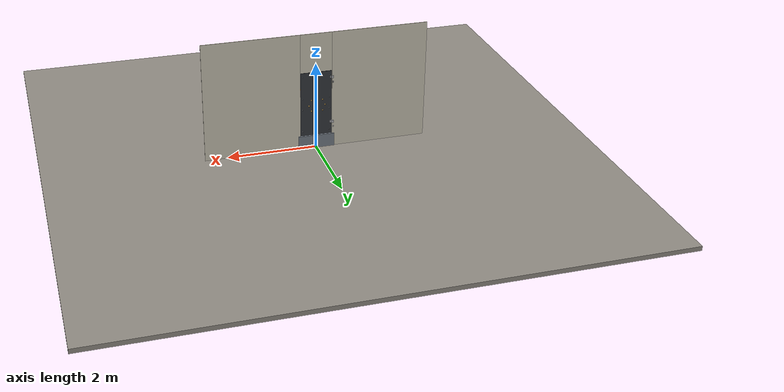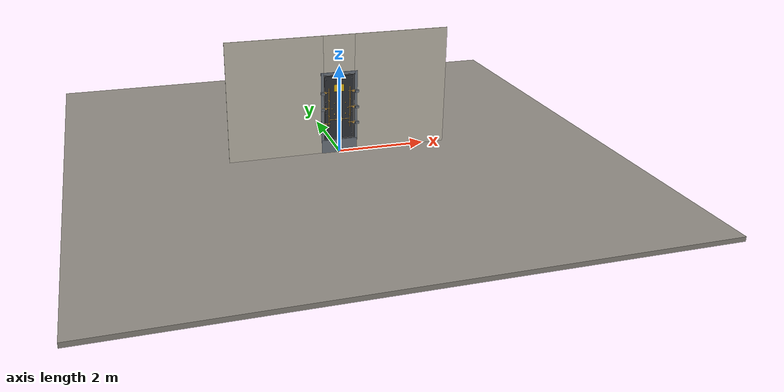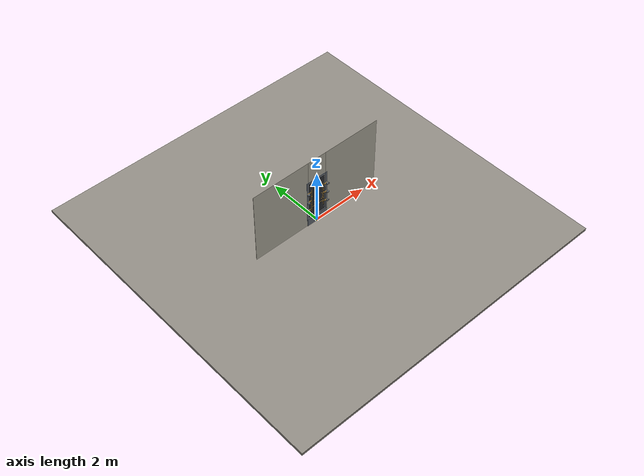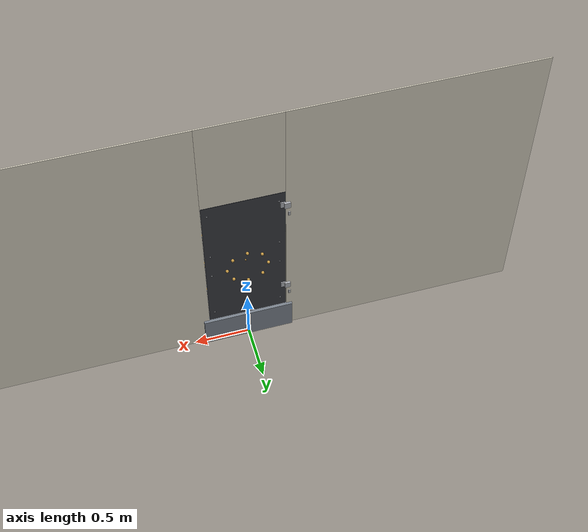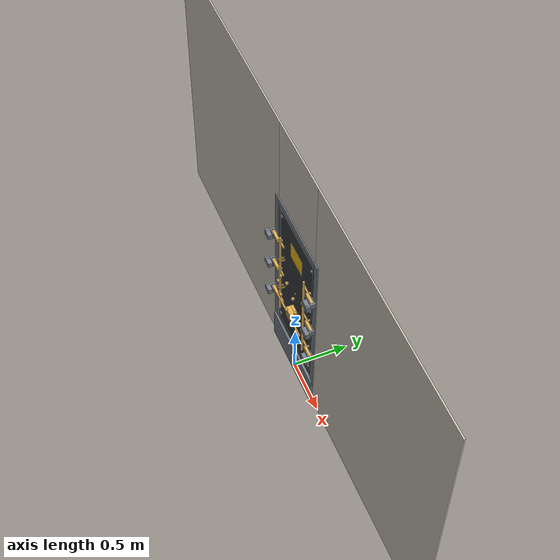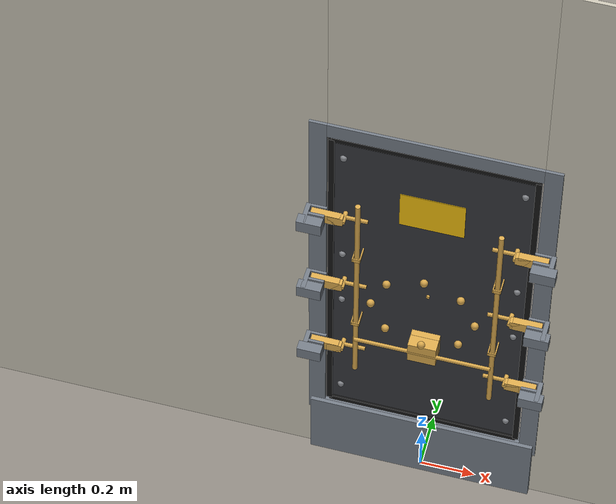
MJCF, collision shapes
<?xml version="1.0" ?>
<mujoco model="db0744_ship_watertight_full">
  <compiler angle="radian" meshdir="../../hardware" texturedir="../../textures" autolimits="true" inertiafromgeom="false"/>
  <option timestep="0.002" integrator="implicitfast" cone="elliptic" impratio="10" noslip_iterations="3">
    <flag multiccd="enable"/>
  </option>
  <size memory="16M"/>
  <default>
    <geom condim="4" solref="0.005 1" solimp="0.95 0.99 0.001"/>
    <joint solreflimit="0.005 1" solimplimit="0.95 0.99 0.001"/>
    <tendon solreflimit="0.005 1"/>
    <equality solref="0.002 1"/>
  </default>
  <visual>
    <headlight ambient="0.4 0.4 0.4" diffuse="0.7 0.7 0.7" specular="0.2 0.2 0.2"/>
    <quality shadowsize="4096"/>
    <map znear="0.01" zfar="60"/>
  </visual>
  <asset>
    <mesh name="hinge_aa6f1f959a" file="hinge_aa6f1f959a.obj"/>
    <mesh name="hinge_jamb_5a3d6f5c54" file="hinge_jamb_5a3d6f5c54.obj"/>
    <mesh name="wheel_9768cee49b" file="wheel_9768cee49b.obj"/>
    <material name="mat_floor" rgba="0.55 0.53 0.5 1" specular="0.2" shininess="0.15" reflectance="0"/>
    <material name="mat_wall" rgba="0.78 0.76 0.7 1" specular="0.2" shininess="0.1" reflectance="0"/>
    <material name="mat_leaf" rgba="0.2 0.21 0.23 1" specular="0.23" shininess="0.54" reflectance="0.02"/>
    <material name="mat_rivet" rgba="0.55 0.56 0.58 1" specular="0.8" shininess="0.55" reflectance="0.4"/>
    <material name="mat_frame" rgba="0.45 0.48 0.52 1" specular="0.32" shininess="0.6" reflectance="0.08"/>
    <material name="mat_gasket" rgba="0.08 0.08 0.08 1" specular="0.2" shininess="0.1" reflectance="0"/>
    <material name="mat_op_brass" rgba="0.85 0.66 0.3 1" specular="0.8" shininess="0.75" reflectance="0.4"/>
    <material name="mat_trim" rgba="0.85 0.66 0.3 1" specular="0.8" shininess="0.75" reflectance="0.4"/>
    <material name="mat_hinge" rgba="0.65 0.66 0.68 1" specular="0.74" shininess="0.5" reflectance="0.36"/>
    <material name="mat_placard" rgba="0.95 0.75 0.05 1" specular="0.2" shininess="0.5" reflectance="0"/>
    <texture name="skybox" type="skybox" builtin="gradient" rgb1="0.6 0.7 0.85" rgb2="0.9 0.92 0.95" width="256" height="256"/>
  </asset>
  <worldbody>
    <light name="sun" pos="1.5 -2.5 4" dir="-0.3 0.5 -0.8" directional="true" diffuse="0.8 0.8 0.8" specular="0.3 0.3 0.3" castshadow="true"/>
    <light name="fill" pos="-1.5 2.5 3" dir="0.3 -0.5 -0.7" directional="true" diffuse="0.35 0.35 0.4" castshadow="false"/>
    <camera name="robot_view" pos="0 -2.040625 1.476375" xyaxes="1 0 0 0 0.26963 0.962964" fovy="52"/>
    <camera name="far_view" pos="0 2.040625 1.476375" xyaxes="-1 0 0 0 -0.26963 0.962964" fovy="52"/>
    <camera name="iso" pos="1.550875 -1.714125 1.802875" xyaxes="0.741536 0.670913 0 -0.242917 0.268487 0.932151" fovy="46"/>
    <camera name="detail_handle" pos="0.179 -0.884 1.51" xyaxes="0.97561 0.219512 0 -0.070934 0.315262 0.94635" fovy="38"/>
    <geom name="floor" type="box" size="6 6 0.05" pos="0 0 -0.05" material="mat_floor" group="0" contype="1" conaffinity="1" friction="0.8 0.005 0.0001" density="2400"/>
    <geom name="wall_left" type="box" size="1.0725 0.006 1.35" pos="-1.4275 0 1.35" material="mat_wall" group="0" contype="1" conaffinity="1" friction="0.6 0.005 0.0001" density="800"/>
    <geom name="wall_right" type="box" size="1.0725 0.006 1.35" pos="1.4275 0 1.35" material="mat_wall" group="0" contype="1" conaffinity="1" friction="0.6 0.005 0.0001" density="800"/>
    <geom name="wall_header" type="box" size="0.355 0.006 0.445" pos="0 0 2.255" material="mat_wall" group="0" contype="1" conaffinity="1" friction="0.6 0.005 0.0001" density="800"/>
    <geom name="flange_l" type="box" size="0.03 0.006 0.815" pos="-0.385 -0.01 1.055" material="mat_frame" group="0" contype="1" conaffinity="1" friction="0.6 0.005 0.0001" solref="0.02 1" density="7850"/>
    <geom name="flange_r" type="box" size="0.03 0.006 0.815" pos="0.385 -0.01 1.055" material="mat_frame" group="0" contype="1" conaffinity="1" friction="0.6 0.005 0.0001" solref="0.02 1" density="7850"/>
    <geom name="flange_t" type="box" size="0.355 0.006 0.03" pos="0 -0.01 1.84" material="mat_frame" group="0" contype="1" conaffinity="1" friction="0.6 0.005 0.0001" solref="0.02 1" density="7850"/>
    <geom name="flange_b" type="box" size="0.355 0.006 0.03" pos="0 -0.01 0.27" material="mat_frame" group="0" contype="1" conaffinity="1" friction="0.6 0.005 0.0001" solref="0.02 1" density="7850"/>
    <geom name="coaming" type="box" size="0.405 0.03 0.15" pos="0 0 0.15" material="mat_frame" group="0" contype="1" conaffinity="1" friction="0.6 0.005 0.0001" density="7850"/>
    <geom name="cleat_0" type="box" size="0.0275 0.005 0.025" pos="0.3765 -0.0205 0.683333" material="mat_frame" group="0" contype="1" conaffinity="1" friction="0.6 0.005 0.0001" density="7850"/>
    <geom name="cleat_0_outer" type="box" size="0.0275 0.005 0.025" pos="0.3765 -0.0555 0.683333" material="mat_frame" group="0" contype="1" conaffinity="1" friction="0.6 0.005 0.0001" density="7850"/>
    <geom name="cleat_0_base" type="box" size="0.0425 0.018 0.025" pos="0.3915 -0.084 0.683333" material="mat_frame" group="0" contype="1" conaffinity="1" friction="0.6 0.005 0.0001" density="7850"/>
    <geom name="cleat_0_bridge" type="box" size="0.008 0.041 0.025" pos="0.412 -0.057 0.683333" material="mat_frame" group="0" contype="1" conaffinity="1" friction="0.6 0.005 0.0001" density="7850"/>
    <geom name="cleat_1" type="box" size="0.0275 0.005 0.025" pos="-0.3785 -0.0205 0.683333" material="mat_frame" group="0" contype="1" conaffinity="1" friction="0.6 0.005 0.0001" density="7850"/>
    <geom name="cleat_1_outer" type="box" size="0.0275 0.005 0.025" pos="-0.3785 -0.0555 0.683333" material="mat_frame" group="0" contype="1" conaffinity="1" friction="0.6 0.005 0.0001" density="7850"/>
    <geom name="cleat_1_base" type="box" size="0.0425 0.018 0.025" pos="-0.3935 -0.084 0.683333" material="mat_frame" group="0" contype="1" conaffinity="1" friction="0.6 0.005 0.0001" density="7850"/>
    <geom name="cleat_1_bridge" type="box" size="0.008 0.041 0.025" pos="-0.414 -0.057 0.683333" material="mat_frame" group="0" contype="1" conaffinity="1" friction="0.6 0.005 0.0001" density="7850"/>
    <geom name="cleat_2" type="box" size="0.0275 0.005 0.025" pos="0.3765 -0.0205 1.05" material="mat_frame" group="0" contype="1" conaffinity="1" friction="0.6 0.005 0.0001" density="7850"/>
    <geom name="cleat_2_outer" type="box" size="0.0275 0.005 0.025" pos="0.3765 -0.0555 1.05" material="mat_frame" group="0" contype="1" conaffinity="1" friction="0.6 0.005 0.0001" density="7850"/>
    <geom name="cleat_2_base" type="box" size="0.0425 0.018 0.025" pos="0.3915 -0.084 1.05" material="mat_frame" group="0" contype="1" conaffinity="1" friction="0.6 0.005 0.0001" density="7850"/>
    <geom name="cleat_2_bridge" type="box" size="0.008 0.041 0.025" pos="0.412 -0.057 1.05" material="mat_frame" group="0" contype="1" conaffinity="1" friction="0.6 0.005 0.0001" density="7850"/>
    <geom name="cleat_3" type="box" size="0.0275 0.005 0.025" pos="-0.3785 -0.0205 1.05" material="mat_frame" group="0" contype="1" conaffinity="1" friction="0.6 0.005 0.0001" density="7850"/>
    <geom name="cleat_3_outer" type="box" size="0.0275 0.005 0.025" pos="-0.3785 -0.0555 1.05" material="mat_frame" group="0" contype="1" conaffinity="1" friction="0.6 0.005 0.0001" density="7850"/>
    <geom name="cleat_3_base" type="box" size="0.0425 0.018 0.025" pos="-0.3935 -0.084 1.05" material="mat_frame" group="0" contype="1" conaffinity="1" friction="0.6 0.005 0.0001" density="7850"/>
    <geom name="cleat_3_bridge" type="box" size="0.008 0.041 0.025" pos="-0.414 -0.057 1.05" material="mat_frame" group="0" contype="1" conaffinity="1" friction="0.6 0.005 0.0001" density="7850"/>
    <geom name="cleat_4" type="box" size="0.0275 0.005 0.025" pos="0.3765 -0.0205 1.416667" material="mat_frame" group="0" contype="1" conaffinity="1" friction="0.6 0.005 0.0001" density="7850"/>
    <geom name="cleat_4_outer" type="box" size="0.0275 0.005 0.025" pos="0.3765 -0.0555 1.416667" material="mat_frame" group="0" contype="1" conaffinity="1" friction="0.6 0.005 0.0001" density="7850"/>
    <geom name="cleat_4_base" type="box" size="0.0425 0.018 0.025" pos="0.3915 -0.084 1.416667" material="mat_frame" group="0" contype="1" conaffinity="1" friction="0.6 0.005 0.0001" density="7850"/>
    <geom name="cleat_4_bridge" type="box" size="0.008 0.041 0.025" pos="0.412 -0.057 1.416667" material="mat_frame" group="0" contype="1" conaffinity="1" friction="0.6 0.005 0.0001" density="7850"/>
    <geom name="cleat_5" type="box" size="0.0275 0.005 0.025" pos="-0.3785 -0.0205 1.416667" material="mat_frame" group="0" contype="1" conaffinity="1" friction="0.6 0.005 0.0001" density="7850"/>
    <geom name="cleat_5_outer" type="box" size="0.0275 0.005 0.025" pos="-0.3785 -0.0555 1.416667" material="mat_frame" group="0" contype="1" conaffinity="1" friction="0.6 0.005 0.0001" density="7850"/>
    <geom name="cleat_5_base" type="box" size="0.0425 0.018 0.025" pos="-0.3935 -0.084 1.416667" material="mat_frame" group="0" contype="1" conaffinity="1" friction="0.6 0.005 0.0001" density="7850"/>
    <geom name="cleat_5_bridge" type="box" size="0.008 0.041 0.025" pos="-0.414 -0.057 1.416667" material="mat_frame" group="0" contype="1" conaffinity="1" friction="0.6 0.005 0.0001" density="7850"/>
    <geom name="hinge_0_jamb" type="mesh" mesh="hinge_jamb_5a3d6f5c54" pos="-0.385 0.024 0.554" quat="0 1 0 0" material="mat_hinge" group="1" contype="0" conaffinity="0" density="7850"/>
    <geom name="hinge_0_jamb_lug" type="box" size="0.01 0.004 0.02" pos="-0.385 0.01 0.467" material="mat_hinge" group="1" contype="0" conaffinity="0" density="7850"/>
    <geom name="hinge_1_jamb" type="mesh" mesh="hinge_jamb_5a3d6f5c54" pos="-0.385 0.024 1.624" quat="0 1 0 0" material="mat_hinge" group="1" contype="0" conaffinity="0" density="7850"/>
    <geom name="hinge_1_jamb_lug" type="box" size="0.01 0.004 0.02" pos="-0.385 0.01 1.537" material="mat_hinge" group="1" contype="0" conaffinity="0" density="7850"/>
    <site name="approach_point" pos="0 -1.5 0" quat="1 0 0 0" size="0.05" rgba="0.2 0.9 0.2 0.5" group="4"/>
    <site name="goal_point" pos="0 1.5 0" quat="1 0 0 0" size="0.05" rgba="0.2 0.9 0.2 0.5" group="4"/>
    <site name="door_plane_center" pos="0 0 1.055" quat="1 0 0 0" size="0.02" rgba="0.2 0.9 0.2 0.5" group="4"/>
    <body name="leaf" pos="-0.355 0 0.3">
      <inertial pos="0.33972 -0.00229 0.737431" mass="70.205844" quat="-0.495354 0.501314 0.500715 0.502587" diaginertia="2.993948112 12.898256742 15.869119153"/>
      <joint name="leaf_hinge" type="hinge" axis="0 0 1" pos="-0.03 0.024 0" limited="true" range="0 1.919862" solreflimit="0.02 1" damping="0.115043" frictionloss="6.226044" armature="0.02"/>
      <geom name="leaf_slab" type="box" size="0.35 0.004 0.75" pos="0.354 0 0.754" material="mat_leaf" group="0" contype="1" conaffinity="1" friction="0.4 0.005 0.0001" density="1"/>
      <geom name="leaf_rivet_0_0" type="sphere" size="0.012" pos="0.054 -0.004 0.104" material="mat_rivet" group="2" contype="0" conaffinity="0" density="7850"/>
      <geom name="leaf_rivet_0_1" type="sphere" size="0.012" pos="0.654 -0.004 0.104" material="mat_rivet" group="2" contype="0" conaffinity="0" density="7850"/>
      <geom name="leaf_rivet_2_0" type="sphere" size="0.012" pos="0.054 -0.004 0.624" material="mat_rivet" group="2" contype="0" conaffinity="0" density="7850"/>
      <geom name="leaf_rivet_2_1" type="sphere" size="0.012" pos="0.654 -0.004 0.624" material="mat_rivet" group="2" contype="0" conaffinity="0" density="7850"/>
      <geom name="leaf_rivet_3_0" type="sphere" size="0.012" pos="0.054 -0.004 0.884" material="mat_rivet" group="2" contype="0" conaffinity="0" density="7850"/>
      <geom name="leaf_rivet_3_1" type="sphere" size="0.012" pos="0.654 -0.004 0.884" material="mat_rivet" group="2" contype="0" conaffinity="0" density="7850"/>
      <geom name="leaf_rivet_5_0" type="sphere" size="0.012" pos="0.054 -0.004 1.404" material="mat_rivet" group="2" contype="0" conaffinity="0" density="7850"/>
      <geom name="leaf_rivet_5_1" type="sphere" size="0.012" pos="0.654 -0.004 1.404" material="mat_rivet" group="2" contype="0" conaffinity="0" density="7850"/>
      <geom name="gasket_l" type="box" size="0.01 0.004 0.74" pos="0.014 -0.008 0.754" material="mat_gasket" group="1" contype="0" conaffinity="0" density="1100"/>
      <geom name="gasket_r" type="box" size="0.01 0.004 0.74" pos="0.694 -0.008 0.754" material="mat_gasket" group="1" contype="0" conaffinity="0" density="1100"/>
      <geom name="gasket_b" type="box" size="0.34 0.004 0.01" pos="0.354 -0.008 0.014" material="mat_gasket" group="1" contype="0" conaffinity="0" density="1100"/>
      <geom name="gasket_t" type="box" size="0.34 0.004 0.01" pos="0.354 -0.008 1.494" material="mat_gasket" group="1" contype="0" conaffinity="0" density="1100"/>
      <geom name="wheel_gearbox_mount" type="box" size="0.05 0.0125 0.045" pos="0.354 -0.0155 0.49" material="mat_op_brass" group="1" contype="0" conaffinity="0" density="7800"/>
      <geom name="wheel_gearbox" type="box" size="0.05 0.022 0.045" pos="0.354 -0.049 0.49" material="mat_op_brass" group="1" contype="0" conaffinity="0" density="7800"/>
      <geom name="linkage_rod_r_guide_0_leg_n" type="box" size="0.008 0.002 0.02725" pos="0.6065 -0.03125 0.566667" quat="0.5 0.5 -0.5 0.5" material="mat_op_brass" group="1" contype="0" conaffinity="0" density="7800"/>
      <geom name="linkage_rod_r_guide_0_leg_p" type="box" size="0.008 0.002 0.02725" pos="0.5815 -0.03125 0.566667" quat="0.5 0.5 -0.5 0.5" material="mat_op_brass" group="1" contype="0" conaffinity="0" density="7800"/>
      <geom name="linkage_rod_r_guide_0_bridge" type="box" size="0.008 0.0145 0.002" pos="0.594 -0.0565 0.566667" quat="0.5 0.5 -0.5 0.5" material="mat_op_brass" group="1" contype="0" conaffinity="0" density="7800"/>
      <geom name="linkage_rod_r_guide_1_leg_n" type="box" size="0.008 0.002 0.02725" pos="0.6065 -0.03125 0.933333" quat="0.5 0.5 -0.5 0.5" material="mat_op_brass" group="1" contype="0" conaffinity="0" density="7800"/>
      <geom name="linkage_rod_r_guide_1_leg_p" type="box" size="0.008 0.002 0.02725" pos="0.5815 -0.03125 0.933333" quat="0.5 0.5 -0.5 0.5" material="mat_op_brass" group="1" contype="0" conaffinity="0" density="7800"/>
      <geom name="linkage_rod_r_guide_1_bridge" type="box" size="0.008 0.0145 0.002" pos="0.594 -0.0565 0.933333" quat="0.5 0.5 -0.5 0.5" material="mat_op_brass" group="1" contype="0" conaffinity="0" density="7800"/>
      <geom name="linkage_rod_l_guide_0_leg_n" type="box" size="0.008 0.002 0.02725" pos="0.1265 -0.03125 0.566667" quat="0.5 0.5 -0.5 0.5" material="mat_op_brass" group="1" contype="0" conaffinity="0" density="7800"/>
      <geom name="linkage_rod_l_guide_0_leg_p" type="box" size="0.008 0.002 0.02725" pos="0.1015 -0.03125 0.566667" quat="0.5 0.5 -0.5 0.5" material="mat_op_brass" group="1" contype="0" conaffinity="0" density="7800"/>
      <geom name="linkage_rod_l_guide_0_bridge" type="box" size="0.008 0.0145 0.002" pos="0.114 -0.0565 0.566667" quat="0.5 0.5 -0.5 0.5" material="mat_op_brass" group="1" contype="0" conaffinity="0" density="7800"/>
      <geom name="linkage_rod_l_guide_1_leg_n" type="box" size="0.008 0.002 0.02725" pos="0.1265 -0.03125 0.933333" quat="0.5 0.5 -0.5 0.5" material="mat_op_brass" group="1" contype="0" conaffinity="0" density="7800"/>
      <geom name="linkage_rod_l_guide_1_leg_p" type="box" size="0.008 0.002 0.02725" pos="0.1015 -0.03125 0.933333" quat="0.5 0.5 -0.5 0.5" material="mat_op_brass" group="1" contype="0" conaffinity="0" density="7800"/>
      <geom name="linkage_rod_l_guide_1_bridge" type="box" size="0.008 0.0145 0.002" pos="0.114 -0.0565 0.933333" quat="0.5 0.5 -0.5 0.5" material="mat_op_brass" group="1" contype="0" conaffinity="0" density="7800"/>
      <geom name="linkage_tube" type="cylinder" size="0.007 0.24" pos="0.354 -0.066 0.49" quat="0.707107 0 0.707107 0" material="mat_op_brass" group="1" contype="0" conaffinity="0" density="7800"/>
      <geom name="hinge_0" type="mesh" mesh="hinge_aa6f1f959a" pos="-0.03 0.024 0.254" quat="0 1 0 0" material="mat_hinge" group="1" contype="0" conaffinity="0" density="7850"/>
      <geom name="hinge_0_lug_foot" type="box" size="0.02 0.0045 0.03" pos="0.026 0.0085 0.287" material="mat_hinge" group="1" contype="0" conaffinity="0" density="7850"/>
      <geom name="hinge_0_lug" type="box" size="0.026 0.0095 0.03" pos="-0.01 0.0205 0.287" material="mat_hinge" group="1" contype="0" conaffinity="0" density="7850"/>
      <geom name="hinge_1" type="mesh" mesh="hinge_aa6f1f959a" pos="-0.03 0.024 1.324" quat="0 1 0 0" material="mat_hinge" group="1" contype="0" conaffinity="0" density="7850"/>
      <geom name="hinge_1_lug_foot" type="box" size="0.02 0.0045 0.03" pos="0.026 0.0085 1.357" material="mat_hinge" group="1" contype="0" conaffinity="0" density="7850"/>
      <geom name="hinge_1_lug" type="box" size="0.026 0.0095 0.03" pos="-0.01 0.0205 1.357" material="mat_hinge" group="1" contype="0" conaffinity="0" density="7850"/>
      <geom name="warning_placard" type="box" size="0.11 0.001 0.08" pos="0.354 -0.005 1.2" material="mat_placard" group="2" contype="0" conaffinity="0" density="1000"/>
      <body name="wheel" pos="0.354 0 0.75">
        <inertial pos="0 0 0" mass="5.986828" quat="0.5 -0.5 -0.5 -0.5" diaginertia="0.115516198 0.115516198 0.148211455"/>
        <joint name="wheel_hinge" type="hinge" axis="0 -1 0" limited="true" range="0 9.4248" damping="0.5" frictionloss="2" armature="0.01"/>
        <geom name="wheel_spindle" type="cylinder" size="0.006 0.012" pos="0 0 0" quat="0.707107 -0.707107 0 0" material="mat_op_brass" group="1" contype="0" conaffinity="0" density="7850"/>
        <geom name="wheel_wheel_n" type="mesh" mesh="wheel_9768cee49b" pos="0 -0.004 0" quat="0.707107 0.707107 0 0" material="mat_op_brass" group="1" contype="0" conaffinity="0" density="3000"/>
        <geom name="wheel_wheel_col_0_n" type="sphere" size="0.014" pos="0.18 -0.084 0" material="mat_op_brass" group="0" contype="1" conaffinity="1" friction="0.6 0.005 0.0001" density="3000"/>
        <geom name="wheel_wheel_col_1_n" type="sphere" size="0.014" pos="0.127279 -0.084 0.127279" material="mat_op_brass" group="0" contype="1" conaffinity="1" friction="0.6 0.005 0.0001" density="3000"/>
        <geom name="wheel_wheel_col_2_n" type="sphere" size="0.014" pos="0 -0.084 0.18" material="mat_op_brass" group="0" contype="1" conaffinity="1" friction="0.6 0.005 0.0001" density="3000"/>
        <geom name="wheel_wheel_col_3_n" type="sphere" size="0.014" pos="-0.127279 -0.084 0.127279" material="mat_op_brass" group="0" contype="1" conaffinity="1" friction="0.6 0.005 0.0001" density="3000"/>
        <geom name="wheel_wheel_col_4_n" type="sphere" size="0.014" pos="-0.18 -0.084 0" material="mat_op_brass" group="0" contype="1" conaffinity="1" friction="0.6 0.005 0.0001" density="3000"/>
        <geom name="wheel_wheel_col_5_n" type="sphere" size="0.014" pos="-0.127279 -0.084 -0.127279" material="mat_op_brass" group="0" contype="1" conaffinity="1" friction="0.6 0.005 0.0001" density="3000"/>
        <geom name="wheel_wheel_col_6_n" type="sphere" size="0.014" pos="0 -0.084 -0.18" material="mat_op_brass" group="0" contype="1" conaffinity="1" friction="0.6 0.005 0.0001" density="3000"/>
        <geom name="wheel_wheel_col_7_n" type="sphere" size="0.014" pos="0.127279 -0.084 -0.127279" material="mat_op_brass" group="0" contype="1" conaffinity="1" friction="0.6 0.005 0.0001" density="3000"/>
        <geom name="wheel_wheel_p" type="mesh" mesh="wheel_9768cee49b" pos="0 0.004 0" quat="-0.707107 0.707107 0 0" material="mat_op_brass" group="1" contype="0" conaffinity="0" density="3000"/>
        <geom name="wheel_wheel_col_0_p" type="sphere" size="0.014" pos="0.18 0.084 0" material="mat_op_brass" group="0" contype="1" conaffinity="1" friction="0.6 0.005 0.0001" density="3000"/>
        <geom name="wheel_wheel_col_1_p" type="sphere" size="0.014" pos="0.127279 0.084 0.127279" material="mat_op_brass" group="0" contype="1" conaffinity="1" friction="0.6 0.005 0.0001" density="3000"/>
        <geom name="wheel_wheel_col_2_p" type="sphere" size="0.014" pos="0 0.084 0.18" material="mat_op_brass" group="0" contype="1" conaffinity="1" friction="0.6 0.005 0.0001" density="3000"/>
        <geom name="wheel_wheel_col_3_p" type="sphere" size="0.014" pos="-0.127279 0.084 0.127279" material="mat_op_brass" group="0" contype="1" conaffinity="1" friction="0.6 0.005 0.0001" density="3000"/>
        <geom name="wheel_wheel_col_4_p" type="sphere" size="0.014" pos="-0.18 0.084 0" material="mat_op_brass" group="0" contype="1" conaffinity="1" friction="0.6 0.005 0.0001" density="3000"/>
        <geom name="wheel_wheel_col_5_p" type="sphere" size="0.014" pos="-0.127279 0.084 -0.127279" material="mat_op_brass" group="0" contype="1" conaffinity="1" friction="0.6 0.005 0.0001" density="3000"/>
        <geom name="wheel_wheel_col_6_p" type="sphere" size="0.014" pos="0 0.084 -0.18" material="mat_op_brass" group="0" contype="1" conaffinity="1" friction="0.6 0.005 0.0001" density="3000"/>
        <geom name="wheel_wheel_col_7_p" type="sphere" size="0.014" pos="0.127279 0.084 -0.127279" material="mat_op_brass" group="0" contype="1" conaffinity="1" friction="0.6 0.005 0.0001" density="3000"/>
        <site name="wheel_grip_n" pos="0 -0.084 0.18" quat="1 0 0 0" size="0.012" rgba="0.2 0.9 0.2 0.5" group="4"/>
        <site name="wheel_grip_p" pos="0 0.084 0.18" quat="1 0 0 0" size="0.012" rgba="0.2 0.9 0.2 0.5" group="4"/>
      </body>
      <body name="dog_0" pos="0.644 0 0.383333">
        <inertial pos="0.03941 -0.036144 0" mass="1.27371" quat="0.706505 0.706505 -0.029155 -0.029155" diaginertia="0.000225936 0.00196141 0.002015712"/>
        <joint name="dog_0_hinge" type="hinge" axis="0 -1 0" limited="true" range="0 1.5708" damping="0.5" frictionloss="0.5" armature="0.005"/>
        <geom name="dog_0_rod_crank" type="cylinder" size="0.007 0.04" pos="-0.04 -0.024 0" quat="0.707107 0 0.707107 0" material="mat_op_brass" group="1" contype="0" conaffinity="0" density="7800"/>
        <geom name="dog_0_wedge" type="box" size="0.05 0.012 0.02" pos="0.06 -0.038 0" material="mat_op_brass" group="0" contype="1" conaffinity="1" friction="0.6 0.005 0.0001" density="7800"/>
        <geom name="dog_0_shaft" type="cylinder" size="0.008 0.025" pos="0 -0.025 0" quat="0.707107 -0.707107 0 0" material="mat_op_brass" group="1" contype="0" conaffinity="0" density="7800"/>
        <geom name="dog_0_crank" type="box" size="0.026 0.012 0.018" pos="0.026 -0.038 0" material="mat_op_brass" group="1" contype="0" conaffinity="0" density="7800"/>
      </body>
      <body name="dog_1" pos="0.064 0 0.383333">
        <inertial pos="-0.03941 -0.036144 0" mass="1.27371" quat="0.706505 0.706505 0.029155 0.029155" diaginertia="0.000225936 0.00196141 0.002015712"/>
        <joint name="dog_1_hinge" type="hinge" axis="0 1 0" limited="true" range="0 1.5708" damping="0.5" frictionloss="0.5" armature="0.005"/>
        <geom name="dog_1_rod_crank" type="cylinder" size="0.007 0.04" pos="0.04 -0.024 0" quat="0.707107 0 0.707107 0" material="mat_op_brass" group="1" contype="0" conaffinity="0" density="7800"/>
        <geom name="dog_1_wedge" type="box" size="0.05 0.012 0.02" pos="-0.06 -0.038 0" material="mat_op_brass" group="0" contype="1" conaffinity="1" friction="0.6 0.005 0.0001" density="7800"/>
        <geom name="dog_1_shaft" type="cylinder" size="0.008 0.025" pos="0 -0.025 0" quat="0.707107 -0.707107 0 0" material="mat_op_brass" group="1" contype="0" conaffinity="0" density="7800"/>
        <geom name="dog_1_crank" type="box" size="0.026 0.012 0.018" pos="-0.026 -0.038 0" material="mat_op_brass" group="1" contype="0" conaffinity="0" density="7800"/>
      </body>
      <body name="dog_2" pos="0.644 0 0.75">
        <inertial pos="0.03941 -0.036144 0" mass="1.27371" quat="0.706505 0.706505 -0.029155 -0.029155" diaginertia="0.000225936 0.00196141 0.002015712"/>
        <joint name="dog_2_hinge" type="hinge" axis="0 -1 0" limited="true" range="0 1.5708" damping="0.5" frictionloss="0.5" armature="0.005"/>
        <geom name="dog_2_rod_crank" type="cylinder" size="0.007 0.04" pos="-0.04 -0.024 0" quat="0.707107 0 0.707107 0" material="mat_op_brass" group="1" contype="0" conaffinity="0" density="7800"/>
        <geom name="dog_2_wedge" type="box" size="0.05 0.012 0.02" pos="0.06 -0.038 0" material="mat_op_brass" group="0" contype="1" conaffinity="1" friction="0.6 0.005 0.0001" density="7800"/>
        <geom name="dog_2_shaft" type="cylinder" size="0.008 0.025" pos="0 -0.025 0" quat="0.707107 -0.707107 0 0" material="mat_op_brass" group="1" contype="0" conaffinity="0" density="7800"/>
        <geom name="dog_2_crank" type="box" size="0.026 0.012 0.018" pos="0.026 -0.038 0" material="mat_op_brass" group="1" contype="0" conaffinity="0" density="7800"/>
      </body>
      <body name="dog_3" pos="0.064 0 0.75">
        <inertial pos="-0.03941 -0.036144 0" mass="1.27371" quat="0.706505 0.706505 0.029155 0.029155" diaginertia="0.000225936 0.00196141 0.002015712"/>
        <joint name="dog_3_hinge" type="hinge" axis="0 1 0" limited="true" range="0 1.5708" damping="0.5" frictionloss="0.5" armature="0.005"/>
        <geom name="dog_3_rod_crank" type="cylinder" size="0.007 0.04" pos="0.04 -0.024 0" quat="0.707107 0 0.707107 0" material="mat_op_brass" group="1" contype="0" conaffinity="0" density="7800"/>
        <geom name="dog_3_wedge" type="box" size="0.05 0.012 0.02" pos="-0.06 -0.038 0" material="mat_op_brass" group="0" contype="1" conaffinity="1" friction="0.6 0.005 0.0001" density="7800"/>
        <geom name="dog_3_shaft" type="cylinder" size="0.008 0.025" pos="0 -0.025 0" quat="0.707107 -0.707107 0 0" material="mat_op_brass" group="1" contype="0" conaffinity="0" density="7800"/>
        <geom name="dog_3_crank" type="box" size="0.026 0.012 0.018" pos="-0.026 -0.038 0" material="mat_op_brass" group="1" contype="0" conaffinity="0" density="7800"/>
      </body>
      <body name="dog_4" pos="0.644 0 1.116667">
        <inertial pos="0.03941 -0.036144 0" mass="1.27371" quat="0.706505 0.706505 -0.029155 -0.029155" diaginertia="0.000225936 0.00196141 0.002015712"/>
        <joint name="dog_4_hinge" type="hinge" axis="0 -1 0" limited="true" range="0 1.5708" damping="0.5" frictionloss="0.5" armature="0.005"/>
        <geom name="dog_4_rod_crank" type="cylinder" size="0.007 0.04" pos="-0.04 -0.024 0" quat="0.707107 0 0.707107 0" material="mat_op_brass" group="1" contype="0" conaffinity="0" density="7800"/>
        <geom name="dog_4_wedge" type="box" size="0.05 0.012 0.02" pos="0.06 -0.038 0" material="mat_op_brass" group="0" contype="1" conaffinity="1" friction="0.6 0.005 0.0001" density="7800"/>
        <geom name="dog_4_shaft" type="cylinder" size="0.008 0.025" pos="0 -0.025 0" quat="0.707107 -0.707107 0 0" material="mat_op_brass" group="1" contype="0" conaffinity="0" density="7800"/>
        <geom name="dog_4_crank" type="box" size="0.026 0.012 0.018" pos="0.026 -0.038 0" material="mat_op_brass" group="1" contype="0" conaffinity="0" density="7800"/>
      </body>
      <body name="dog_5" pos="0.064 0 1.116667">
        <inertial pos="-0.03941 -0.036144 0" mass="1.27371" quat="0.706505 0.706505 0.029155 0.029155" diaginertia="0.000225936 0.00196141 0.002015712"/>
        <joint name="dog_5_hinge" type="hinge" axis="0 1 0" limited="true" range="0 1.5708" damping="0.5" frictionloss="0.5" armature="0.005"/>
        <geom name="dog_5_rod_crank" type="cylinder" size="0.007 0.04" pos="0.04 -0.024 0" quat="0.707107 0 0.707107 0" material="mat_op_brass" group="1" contype="0" conaffinity="0" density="7800"/>
        <geom name="dog_5_wedge" type="box" size="0.05 0.012 0.02" pos="-0.06 -0.038 0" material="mat_op_brass" group="0" contype="1" conaffinity="1" friction="0.6 0.005 0.0001" density="7800"/>
        <geom name="dog_5_shaft" type="cylinder" size="0.008 0.025" pos="0 -0.025 0" quat="0.707107 -0.707107 0 0" material="mat_op_brass" group="1" contype="0" conaffinity="0" density="7800"/>
        <geom name="dog_5_crank" type="box" size="0.026 0.012 0.018" pos="-0.026 -0.038 0" material="mat_op_brass" group="1" contype="0" conaffinity="0" density="7800"/>
      </body>
      <body name="linkage_rod_r" pos="0.594 0 0">
        <inertial pos="0 -0.044 0.75" mass="1.852534" quat="0.707107 0 0.707107 0" diaginertia="0.000075028 0.134517786 0.134517786"/>
        <joint name="linkage_rod_r_slide" type="slide" axis="0 0 1" limited="true" range="0 0.05" damping="2" frictionloss="0.5" armature="0.05"/>
        <geom name="linkage_rod_r_geom" type="cylinder" size="0.009 0.466667" pos="0 -0.044 0.75" material="mat_op_brass" group="1" contype="0" conaffinity="0" density="7800"/>
      </body>
      <body name="linkage_rod_l" pos="0.114 0 0">
        <inertial pos="0 -0.044 0.75" mass="1.852534" quat="0.707107 0 0.707107 0" diaginertia="0.000075028 0.134517786 0.134517786"/>
        <joint name="linkage_rod_l_slide" type="slide" axis="0 0 1" limited="true" range="0 0.05" damping="2" frictionloss="0.5" armature="0.05"/>
        <geom name="linkage_rod_l_geom" type="cylinder" size="0.009 0.466667" pos="0 -0.044 0.75" material="mat_op_brass" group="1" contype="0" conaffinity="0" density="7800"/>
      </body>
    </body>
  </worldbody>
  <equality>
    <joint name="wheel_dog_0" joint1="dog_0_hinge" joint2="wheel_hinge" polycoef="0 0.166667 0 0 0" active="true"/>
    <joint name="wheel_dog_1" joint1="dog_1_hinge" joint2="wheel_hinge" polycoef="0 0.166667 0 0 0" active="true"/>
    <joint name="wheel_dog_2" joint1="dog_2_hinge" joint2="wheel_hinge" polycoef="0 0.166667 0 0 0" active="true"/>
    <joint name="wheel_dog_3" joint1="dog_3_hinge" joint2="wheel_hinge" polycoef="0 0.166667 0 0 0" active="true"/>
    <joint name="wheel_dog_4" joint1="dog_4_hinge" joint2="wheel_hinge" polycoef="0 0.166667 0 0 0" active="true"/>
    <joint name="wheel_dog_5" joint1="dog_5_hinge" joint2="wheel_hinge" polycoef="0 0.166667 0 0 0" active="true"/>
    <joint name="wheel_rod_r" joint1="linkage_rod_r_slide" joint2="wheel_hinge" polycoef="0 0.005305 0 0 0" active="true"/>
    <joint name="wheel_rod_l" joint1="linkage_rod_l_slide" joint2="wheel_hinge" polycoef="0 0.005305 0 0 0" active="true"/>
  </equality>
  <sensor>
    <jointpos name="leaf_hinge_pos" joint="leaf_hinge"/>
    <jointvel name="leaf_hinge_vel" joint="leaf_hinge"/>
    <jointpos name="wheel_hinge_pos" joint="wheel_hinge"/>
    <jointvel name="wheel_hinge_vel" joint="wheel_hinge"/>
    <jointpos name="dog_0_hinge_pos" joint="dog_0_hinge"/>
    <jointvel name="dog_0_hinge_vel" joint="dog_0_hinge"/>
    <jointpos name="dog_1_hinge_pos" joint="dog_1_hinge"/>
    <jointvel name="dog_1_hinge_vel" joint="dog_1_hinge"/>
    <jointpos name="dog_2_hinge_pos" joint="dog_2_hinge"/>
    <jointvel name="dog_2_hinge_vel" joint="dog_2_hinge"/>
    <jointpos name="dog_3_hinge_pos" joint="dog_3_hinge"/>
    <jointvel name="dog_3_hinge_vel" joint="dog_3_hinge"/>
    <jointpos name="dog_4_hinge_pos" joint="dog_4_hinge"/>
    <jointvel name="dog_4_hinge_vel" joint="dog_4_hinge"/>
    <jointpos name="dog_5_hinge_pos" joint="dog_5_hinge"/>
    <jointvel name="dog_5_hinge_vel" joint="dog_5_hinge"/>
  </sensor>
</mujoco>
